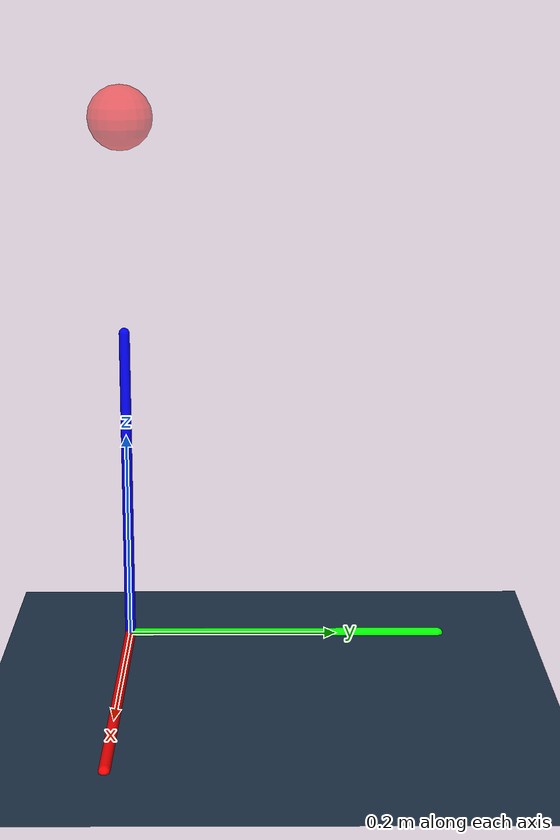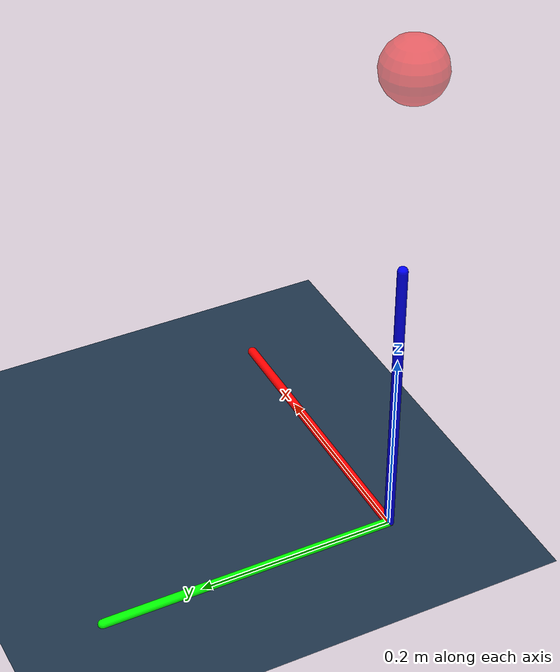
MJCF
<mujoco model="world scene">
  <statistic center="0.3 0 0.4" extent="1"/>

  <option timestep="0.005" iterations="50" ls_iterations="20" noslip_iterations="5"
          integrator="implicitfast">
    <flag eulerdamp="disable"/>
  </option>

  <size nconmax="1000"/>

  <visual>
    <global offwidth="1280" offheight="960" azimuth="120" elevation="-20"/>
    <headlight diffuse="0.6 0.6 0.6" ambient="0.3 0.3 0.3" specular="0 0 0"/>
    <rgba haze="0.15 0.25 0.35 1"/>
  </visual>

  <asset>
    <texture type="skybox" builtin="gradient" rgb1="0.3 0.5 0.7" rgb2="0 0 0"
             width="512" height="3072"/>
    <texture type="2d" name="groundplane" builtin="checker" mark="edge"
         rgb1="0.15 0.25 0.35" rgb2="0.08 0.15 0.22" markrgb="0.8 0.8 0.8"
         width="300" height="300"/>
<material name="groundplane" texture="groundplane" texuniform="true"
          texrepeat="5 5" reflectance="0.1"/>
  </asset>

  <worldbody>
    <light pos="0 0 1.5" dir="0 0 -1" directional="true"/>
    <geom name="floor" size="0 0 0.05" type="plane" material="groundplane"/>

    <!-- Debug axes -->
    <geom type="capsule" fromto="0 0 0 0.3 0 0" size="0.005" rgba="1 0 0 1"
          contype="0" conaffinity="0"/>
    <geom type="capsule" fromto="0 0 0 0 0.3 0" size="0.005" rgba="0 1 0 1"
          contype="0" conaffinity="0"/>
    <geom type="capsule" fromto="0 0 0 0 0 0.3" size="0.005" rgba="0 0 1 1"
          contype="0" conaffinity="0"/>

    <site name="target_sphere" pos="0 0 0.5" size="0.03" rgba="1 0 0 0.5" type="sphere"/>
  </worldbody>
</mujoco>
